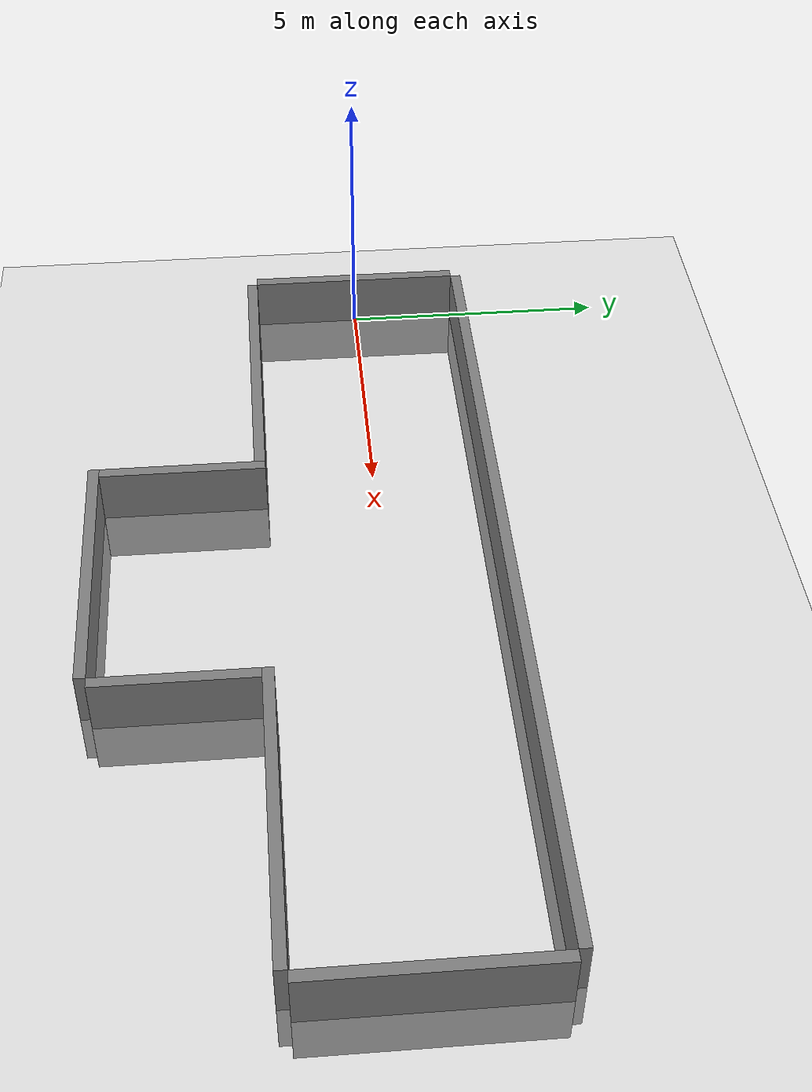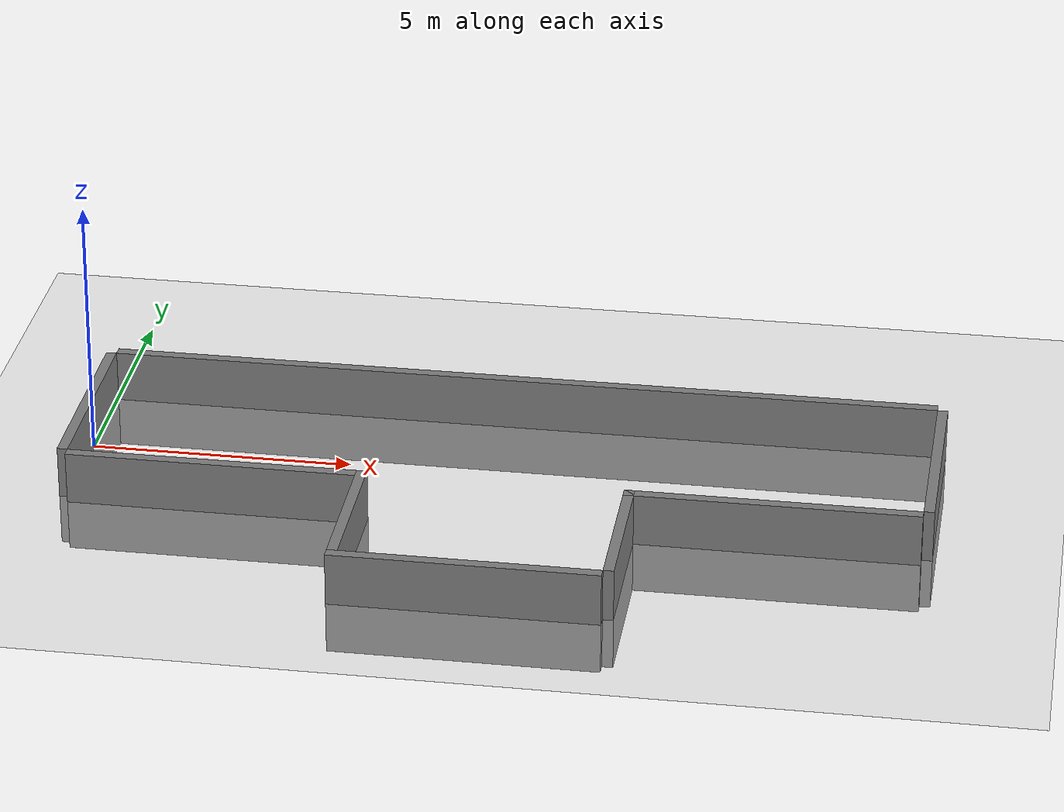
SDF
<sdf version='1.9'>
  <world name='empty'>
    <physics name='1ms' type='ignored'>
      <max_step_size>0.001</max_step_size>
      <real_time_factor>1</real_time_factor>
      <real_time_update_rate>1000</real_time_update_rate>
    </physics>
    <plugin name='ignition::gazebo::systems::Physics' filename='ignition-gazebo-physics-system'/>
    <plugin name='ignition::gazebo::systems::UserCommands' filename='ignition-gazebo-user-commands-system'/>
    <plugin name='ignition::gazebo::systems::SceneBroadcaster' filename='ignition-gazebo-scene-broadcaster-system'/>
    <plugin name='ignition::gazebo::systems::NavSat' filename='ignition-gazebo-navsat-system'/>
    <plugin name='ignition::gazebo::systems::Imu' filename='ignition-gazebo-imu-system'/>
    <spherical_coordinates>
      <surface_model>EARTH_WGS84</surface_model>
      <world_frame_orientation>ENU</world_frame_orientation>
      <latitude_deg>46.52004384</latitude_deg>
      <longitude_deg>6.5653882299999999</longitude_deg>
      <elevation>0</elevation>
      <heading_deg>0</heading_deg>
    </spherical_coordinates>
    <gravity>0 0 -9.8</gravity>
    <magnetic_field>6e-06 2.3e-05 -4.2e-05</magnetic_field>
    <atmosphere type='adiabatic'/>
    <scene>
      <ambient>0.4 0.4 0.4 1</ambient>
      <background>0.7 0.7 0.7 1</background>
      <shadows>true</shadows>
    </scene>
    <model name='ground_plane'>
      <static>true</static>
      <link name='link'>
        <collision name='collision'>
          <geometry>
            <plane>
              <normal>0 0 1</normal>
              <size>100 100</size>
            </plane>
          </geometry>
          <surface>
            <friction>
              <ode/>
            </friction>
            <bounce/>
            <contact/>
          </surface>
        </collision>
        <visual name='visual'>
          <geometry>
            <plane>
              <normal>0 0 1</normal>
              <size>100 100</size>
            </plane>
          </geometry>
          <material>
            <ambient>0.8 0.8 0.8 1</ambient>
            <diffuse>0.8 0.8 0.8 1</diffuse>
            <specular>0.8 0.8 0.8 1</specular>
          </material>
        </visual>
        <pose>0 0 0 0 -0 0</pose>
        <inertial>
          <pose>0 0 0 0 -0 0</pose>
          <mass>1</mass>
          <inertia>
            <ixx>1</ixx>
            <ixy>0</ixy>
            <ixz>0</ixz>
            <iyy>1</iyy>
            <iyz>0</iyz>
            <izz>1</izz>
          </inertia>
        </inertial>
        <enable_wind>false</enable_wind>
      </link>
      <pose>0 0 0 0 -0 0</pose>
      <self_collide>false</self_collide>
    </model>
    <model name="walls">
      <link name='bottom_boundary'>
          <pose>-0.1 0 0 0 0 1.5708</pose> <!-- Adding 0.1 padding to account for 0.2m wall thickness -->
          <collision name='bottom_bounary_collision'>
            <geometry>
              <box>
                <size>4 0.2 2</size>
              </box>
            </geometry>
          </collision>
          <visual name='bottom_bounary_visual'>
            <geometry>
              <box>
                <size>4 0.2 2</size>
              </box>
            </geometry>
            <material>
              <ambient>0.5 0.5 0.5 1</ambient>
            </material>
          </visual>
        </link>
        <link name='top_boundary'>
          <pose>16.1 0 0 0 0 1.5708</pose>
          <collision name='top_boundary_collision'>
            <geometry>
              <box>
                <size>4 0.2 2</size>
              </box>
            </geometry>
          </collision>
          <visual name='top_boundary_visual'>
            <geometry>
              <box>
                <size>4 0.2 2</size>
              </box>
            </geometry>
            <material>
              <ambient>0.5 0.5 0.5 1</ambient>
            </material>
          </visual>
        </link>
        <link name='left_boundary'>
          <pose>8 2.1 0 0 0 0</pose>
          <collision name='left_boundary_collision'>
            <geometry>
              <box>
                <size>16 0.2 2</size>
              </box>
            </geometry>
          </collision>
          <visual name='left_boundary_visual'>
            <geometry>
              <box>
                <size>16 0.2 2</size>
              </box>
            </geometry>
            <material>
              <ambient>0.5 0.5 0.5 1</ambient>
            </material>
          </visual>
        </link>
        <link name='top_right_boundary'>
          <pose>13.25 -2.1 0 0 0 0</pose>
          <collision name='top_right_boundary_collision'>
            <geometry>
              <box>
                <size>5.5 0.2 2</size>
              </box>
            </geometry>
          </collision>
          <visual name='top_right_boundary_visual'>
            <geometry>
              <box>
                <size>5.5 0.2 2</size>
              </box>
            </geometry>
            <material>
              <ambient>0.5 0.5 0.5 1</ambient>
            </material>
          </visual>
        </link>
        <link name='bottom_right_boundary'>
          <pose>2.75 -2.1 0 0 0 0</pose>
          <collision name='bottom_right_boundary_collision'>
            <geometry>
              <box>
                <size>5.5 0.2 2</size>
              </box>
            </geometry>
          </collision>
          <visual name='bottom_right_boundary_visual'>
            <geometry>
              <box>
                <size>5.5 0.2 2</size>
              </box>
            </geometry>
            <material>
              <ambient>0.5 0.5 0.5 1</ambient>
            </material>
          </visual>
        </link>
        <link name='vehicle_top_boundary'>
          <pose>10.6 -3.5 0 0 0 1.5708</pose>
          <collision name='vehicle_top_boundary_collision'>
            <geometry>
              <box>
                <size>3 0.2 2</size>
              </box>
            </geometry>
          </collision>
          <visual name='vehicle_top_boundary_visual'>
            <geometry>
              <box>
                <size>3 0.2 2</size>
              </box>
            </geometry>
            <material>
              <ambient>0.5 0.5 0.5 1</ambient>
            </material>
          </visual>
        </link>
        <link name='vehicle_bottom_boundary'>
          <pose>5.6 -3.5 0 0 0 1.5708</pose>
          <collision name='vehicle_bottom_boundary_collision'>
            <geometry>
              <box>
                <size>3 0.2 2</size>
              </box>
            </geometry>
          </collision>
          <visual name='vehicle_bottom_boundary_visual'>
            <geometry>
              <box>
                <size>3 0.2 2</size>
              </box>
            </geometry>
            <material>
              <ambient>0.5 0.5 0.5 1</ambient>
            </material>
          </visual>
        </link>
        <link name='vehicle_right_boundary'>
          <pose>8 -5.1 0 0 0 0</pose>
          <collision name='vehicle_bottom_boundary_collision'>
            <geometry>
              <box>
                <size>5 0.2 2</size>
              </box>
            </geometry>
          </collision>
          <visual name='vehicle_bottom_boundary_visual'>
            <geometry>
              <box>
                <size>5 0.2 2</size>
              </box>
            </geometry>
            <material>
              <ambient>0.5 0.5 0.5 1</ambient>
            </material>
          </visual>
        </link>
    </model>
    <light name='sun' type='directional'>
      <pose>0 0 10 0 -0 0</pose>
      <cast_shadows>true</cast_shadows>
      <intensity>1</intensity>
      <direction>-0.5 0.1 -0.9</direction>
      <diffuse>1 1 1 1</diffuse>
      <specular>0.5 0.5 0.5 1</specular>
      <attenuation>
        <range>1000</range>
        <linear>0.01</linear>
        <constant>0.90000000000000002</constant>
        <quadratic>0.001</quadratic>
      </attenuation>
      <spot>
        <inner_angle>0</inner_angle>
        <outer_angle>0</outer_angle>
        <falloff>0</falloff>
      </spot>
    </light>
  </world>
</sdf>
